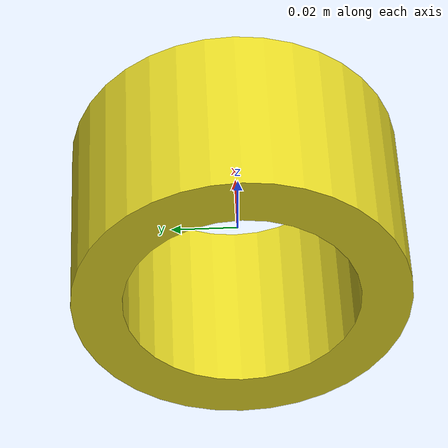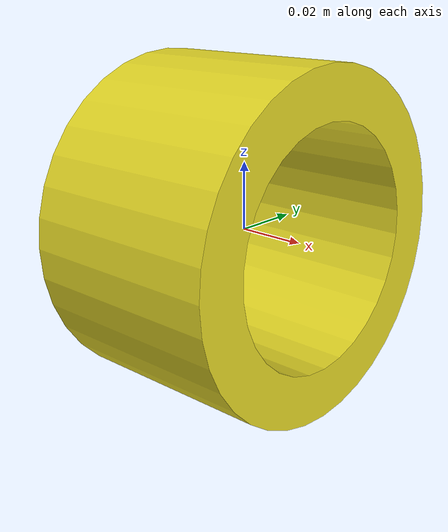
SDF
<?xml version="1.0" encoding="UTF-8"?>
<sdf version="1.4">
  <model name="box">
    <static>true</static>
    <link name="box">
      <visual name="visual_box">
        <pose>0 0 0 0 1.57 0</pose>
        <geometry>
          <mesh>
            <uri>model://yellow_tag/mesh/Cylinder_hole.stl</uri>
            <scale>0.001 0.001 0.001</scale>
          </mesh>
        </geometry>

        <material>
          <script>
              <uri>file://media/materials/scripts/gazebo.material</uri>
              <name>Gazebo/Yellow</name>
            </script>
        </material>
      </visual>
    </link>
  </model>
</sdf>
